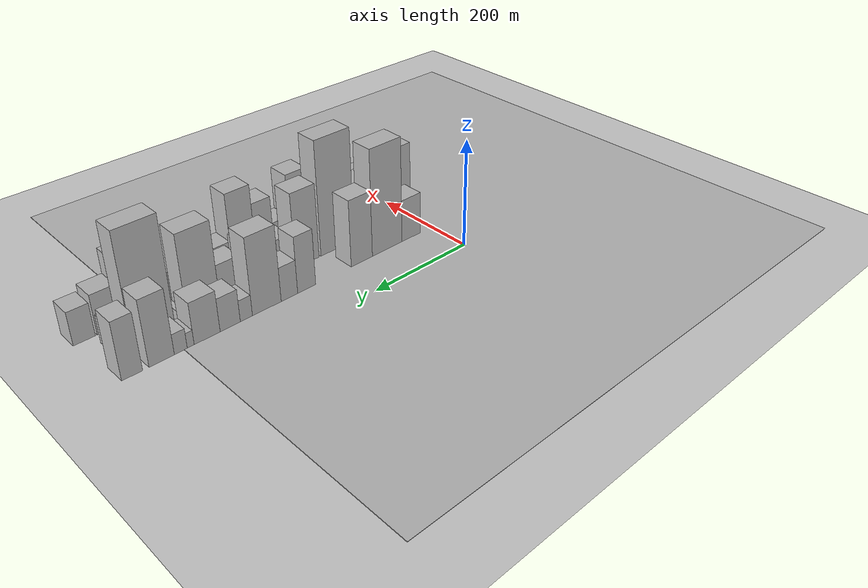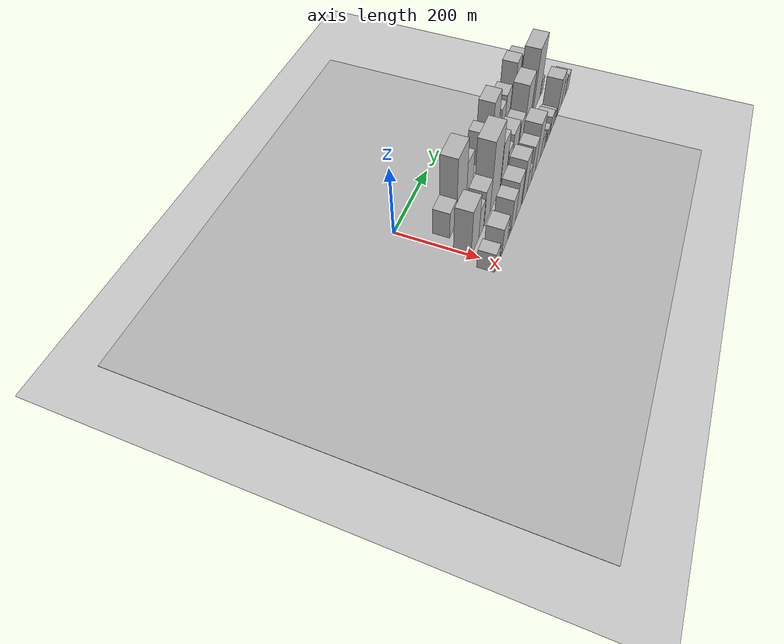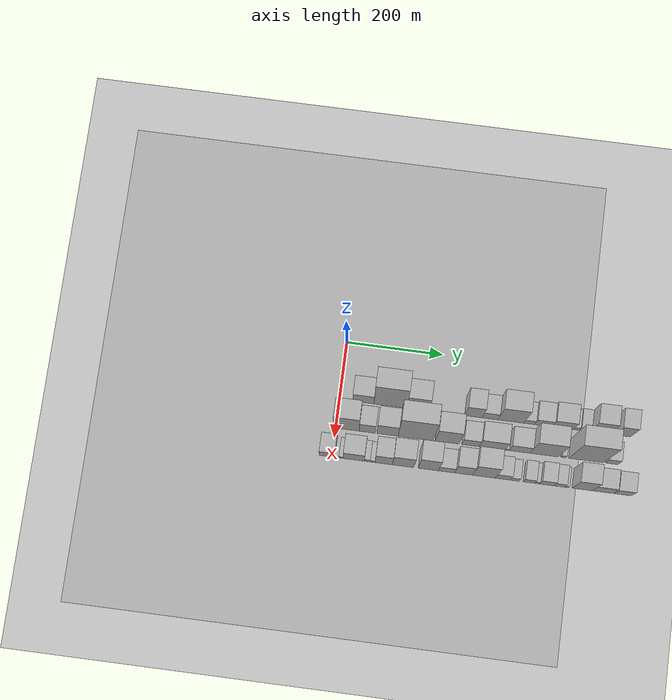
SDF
<sdf version="1.6">
 <world name="default">
  <include><name>ground_plane_1</name><uri>model://HANNAS_ground_plane</uri></include>
  <include>
   <name>ground_plane_2</name>
   <uri>model://HANNAS_ground_plane</uri>
   <pose>100 0 0  0 0 0</pose>
  </include>
  <model name="building_17">
   <static>1</static>
   <pose>100.0000 49.7188 0 0.000000 0.000000 0.000000</pose>
   <link name="link">
    <pose>0 0 40.50 0 0 0</pose>
    <collision name="collision"><geometry><box><size>40.0000 43.7797 81.0000</size></box></geometry></collision>
    <visual name="visual">
     <cast_shadows>0</cast_shadows>
     <geometry><box><size>40.0000 43.7797 81.0000</size></box></geometry>
     <material>
      <script>
       <uri>model://HANNAS_wall/materials/scripts</uri>
       <uri>model://HANNAS_wall/materials/textures</uri>
       <name>vrc/HANNAS_wall</name>
      </script>
     </material>
    </visual>
   </link>
  </model>
  <model name="building_18">
   <static>1</static>
   <pose>100.0000 105.1265 0 0.000000 0.000000 0.000000</pose>
   <link name="link">
    <pose>0 0 100.50 0 0 0</pose>
    <collision name="collision"><geometry><box><size>40.0000 67.0357 201.0000</size></box></geometry></collision>
    <visual name="visual">
     <cast_shadows>0</cast_shadows>
     <geometry><box><size>40.0000 67.0357 201.0000</size></box></geometry>
     <material>
      <script>
       <uri>model://HANNAS_wall/materials/scripts</uri>
       <uri>model://HANNAS_wall/materials/textures</uri>
       <name>vrc/HANNAS_wall</name>
      </script>
     </material>
    </visual>
   </link>
  </model>
  <model name="building_19">
   <static>1</static>
   <pose>100.0000 161.7605 0 0.000000 0.000000 0.000000</pose>
   <link name="link">
    <pose>0 0 63.00 0 0 0</pose>
    <collision name="collision"><geometry><box><size>40.0000 46.2322 126.0000</size></box></geometry></collision>
    <visual name="visual">
     <cast_shadows>0</cast_shadows>
     <geometry><box><size>40.0000 46.2322 126.0000</size></box></geometry>
     <material>
      <script>
       <uri>model://HANNAS_wall/materials/scripts</uri>
       <uri>model://HANNAS_wall/materials/textures</uri>
       <name>vrc/HANNAS_wall</name>
      </script>
     </material>
    </visual>
   </link>
  </model>
  <model name="building_20">
   <static>1</static>
   <pose>100.0000 276.7857 0 0.000000 0.000000 0.000000</pose>
   <link name="link">
    <pose>0 0 52.50 0 0 0</pose>
    <collision name="collision"><geometry><box><size>40.0000 35.9394 105.0000</size></box></geometry></collision>
    <visual name="visual">
     <cast_shadows>0</cast_shadows>
     <geometry><box><size>40.0000 35.9394 105.0000</size></box></geometry>
     <material>
      <script>
       <uri>model://HANNAS_wall/materials/scripts</uri>
       <uri>model://HANNAS_wall/materials/textures</uri>
       <name>vrc/HANNAS_wall</name>
      </script>
     </material>
    </visual>
   </link>
  </model>
  <model name="building_21">
   <static>1</static>
   <pose>100.0000 310.7436 0 0.000000 0.000000 0.000000</pose>
   <link name="link">
    <pose>0 0 31.50 0 0 0</pose>
    <collision name="collision"><geometry><box><size>40.0000 31.9765 63.0000</size></box></geometry></collision>
    <visual name="visual">
     <cast_shadows>0</cast_shadows>
     <geometry><box><size>40.0000 31.9765 63.0000</size></box></geometry>
     <material>
      <script>
       <uri>model://HANNAS_wall/materials/scripts</uri>
       <uri>model://HANNAS_wall/materials/textures</uri>
       <name>vrc/HANNAS_wall</name>
      </script>
     </material>
    </visual>
   </link>
  </model>
  <model name="building_22">
   <static>1</static>
   <pose>100.0000 353.7843 0 0.000000 0.000000 0.000000</pose>
   <link name="link">
    <pose>0 0 70.50 0 0 0</pose>
    <collision name="collision"><geometry><box><size>40.0000 54.1048 141.0000</size></box></geometry></collision>
    <visual name="visual">
     <cast_shadows>0</cast_shadows>
     <geometry><box><size>40.0000 54.1048 141.0000</size></box></geometry>
     <material>
      <script>
       <uri>model://HANNAS_wall/materials/scripts</uri>
       <uri>model://HANNAS_wall/materials/textures</uri>
       <name>vrc/HANNAS_wall</name>
      </script>
     </material>
    </visual>
   </link>
  </model>
  <model name="building_23">
   <static>1</static>
   <pose>100.0000 391.8580 0 0.000000 0.000000 0.000000</pose>
   <link name="link">
    <pose>0 0 19.50 0 0 0</pose>
    <collision name="collision"><geometry><box><size>40.0000 22.0427 39.0000</size></box></geometry></collision>
    <visual name="visual">
     <cast_shadows>0</cast_shadows>
     <geometry><box><size>40.0000 22.0427 39.0000</size></box></geometry>
     <material>
      <script>
       <uri>model://HANNAS_wall/materials/scripts</uri>
       <uri>model://HANNAS_wall/materials/textures</uri>
       <name>vrc/HANNAS_wall</name>
      </script>
     </material>
    </visual>
   </link>
  </model>
  <model name="building_24">
   <static>1</static>
   <pose>100.0000 420.8539 0 0.000000 0.000000 0.000000</pose>
   <link name="link">
    <pose>0 0 30.00 0 0 0</pose>
    <collision name="collision"><geometry><box><size>40.0000 35.9491 60.0000</size></box></geometry></collision>
    <visual name="visual">
     <cast_shadows>0</cast_shadows>
     <geometry><box><size>40.0000 35.9491 60.0000</size></box></geometry>
     <material>
      <script>
       <uri>model://HANNAS_wall/materials/scripts</uri>
       <uri>model://HANNAS_wall/materials/textures</uri>
       <name>vrc/HANNAS_wall</name>
      </script>
     </material>
    </visual>
   </link>
  </model>
  <model name="building_25">
   <static>1</static>
   <pose>100.0000 461.1783 0 0.000000 0.000000 0.000000</pose>
   <link name="link">
    <pose>0 0 37.50 0 0 0</pose>
    <collision name="collision"><geometry><box><size>40.0000 44.6996 75.0000</size></box></geometry></collision>
    <visual name="visual">
     <cast_shadows>0</cast_shadows>
     <geometry><box><size>40.0000 44.6996 75.0000</size></box></geometry>
     <material>
      <script>
       <uri>model://HANNAS_wall/materials/scripts</uri>
       <uri>model://HANNAS_wall/materials/textures</uri>
       <name>vrc/HANNAS_wall</name>
      </script>
     </material>
    </visual>
   </link>
  </model>
  <model name="building_26">
   <static>1</static>
   <pose>100.0000 489.3432 0 0.000000 0.000000 0.000000</pose>
   <link name="link">
    <pose>0 0 13.50 0 0 0</pose>
    <collision name="collision"><geometry><box><size>40.0000 11.6302 27.0000</size></box></geometry></collision>
    <visual name="visual">
     <cast_shadows>0</cast_shadows>
     <geometry><box><size>40.0000 11.6302 27.0000</size></box></geometry>
     <material>
      <script>
       <uri>model://HANNAS_wall/materials/scripts</uri>
       <uri>model://HANNAS_wall/materials/textures</uri>
       <name>vrc/HANNAS_wall</name>
      </script>
     </material>
    </visual>
   </link>
  </model>
  <model name="building_27">
   <static>1</static>
   <pose>100.0000 505.8549 0 0.000000 0.000000 0.000000</pose>
   <link name="link">
    <pose>0 0 18.00 0 0 0</pose>
    <collision name="collision"><geometry><box><size>40.0000 21.3932 36.0000</size></box></geometry></collision>
    <visual name="visual">
     <cast_shadows>0</cast_shadows>
     <geometry><box><size>40.0000 21.3932 36.0000</size></box></geometry>
     <material>
      <script>
       <uri>model://HANNAS_wall/materials/scripts</uri>
       <uri>model://HANNAS_wall/materials/textures</uri>
       <name>vrc/HANNAS_wall</name>
      </script>
     </material>
    </visual>
   </link>
  </model>
  <model name="building_28">
   <static>1</static>
   <pose>100.0000 537.0543 0 0.000000 0.000000 0.000000</pose>
   <link name="link">
    <pose>0 0 58.50 0 0 0</pose>
    <collision name="collision"><geometry><box><size>40.0000 41.0055 117.0000</size></box></geometry></collision>
    <visual name="visual">
     <cast_shadows>0</cast_shadows>
     <geometry><box><size>40.0000 41.0055 117.0000</size></box></geometry>
     <material>
      <script>
       <uri>model://HANNAS_wall/materials/scripts</uri>
       <uri>model://HANNAS_wall/materials/textures</uri>
       <name>vrc/HANNAS_wall</name>
      </script>
     </material>
    </visual>
   </link>
  </model>
  <model name="building_29">
   <static>1</static>
   <pose>100.0000 583.9292 0 0.000000 0.000000 0.000000</pose>
   <link name="link">
    <pose>0 0 51.00 0 0 0</pose>
    <collision name="collision"><geometry><box><size>40.0000 32.7443 102.0000</size></box></geometry></collision>
    <visual name="visual">
     <cast_shadows>0</cast_shadows>
     <geometry><box><size>40.0000 32.7443 102.0000</size></box></geometry>
     <material>
      <script>
       <uri>model://HANNAS_wall/materials/scripts</uri>
       <uri>model://HANNAS_wall/materials/textures</uri>
       <name>vrc/HANNAS_wall</name>
      </script>
     </material>
    </visual>
   </link>
  </model>
  <model name="building_47">
   <static>1</static>
   <pose>160.0000 22.8496 0 0.000000 0.000000 0.000000</pose>
   <link name="link">
    <pose>0 0 72.00 0 0 0</pose>
    <collision name="collision"><geometry><box><size>40.0000 52.5208 144.0000</size></box></geometry></collision>
    <visual name="visual">
     <cast_shadows>0</cast_shadows>
     <geometry><box><size>40.0000 52.5208 144.0000</size></box></geometry>
     <material>
      <script>
       <uri>model://HANNAS_wall/materials/scripts</uri>
       <uri>model://HANNAS_wall/materials/textures</uri>
       <name>vrc/HANNAS_wall</name>
      </script>
     </material>
    </visual>
   </link>
  </model>
  <model name="building_48">
   <static>1</static>
   <pose>160.0000 65.7420 0 0.000000 0.000000 0.000000</pose>
   <link name="link">
    <pose>0 0 46.50 0 0 0</pose>
    <collision name="collision"><geometry><box><size>40.0000 33.2640 93.0000</size></box></geometry></collision>
    <visual name="visual">
     <cast_shadows>0</cast_shadows>
     <geometry><box><size>40.0000 33.2640 93.0000</size></box></geometry>
     <material>
      <script>
       <uri>model://HANNAS_wall/materials/scripts</uri>
       <uri>model://HANNAS_wall/materials/textures</uri>
       <name>vrc/HANNAS_wall</name>
      </script>
     </material>
    </visual>
   </link>
  </model>
  <model name="building_49">
   <static>1</static>
   <pose>160.0000 107.1254 0 0.000000 0.000000 0.000000</pose>
   <link name="link">
    <pose>0 0 55.50 0 0 0</pose>
    <collision name="collision"><geometry><box><size>40.0000 43.5029 111.0000</size></box></geometry></collision>
    <visual name="visual">
     <cast_shadows>0</cast_shadows>
     <geometry><box><size>40.0000 43.5029 111.0000</size></box></geometry>
     <material>
      <script>
       <uri>model://HANNAS_wall/materials/scripts</uri>
       <uri>model://HANNAS_wall/materials/textures</uri>
       <name>vrc/HANNAS_wall</name>
      </script>
     </material>
    </visual>
   </link>
  </model>
  <model name="building_50">
   <static>1</static>
   <pose>160.0000 164.9532 0 0.000000 0.000000 0.000000</pose>
   <link name="link">
    <pose>0 0 108.00 0 0 0</pose>
    <collision name="collision"><geometry><box><size>40.0000 72.1527 216.0000</size></box></geometry></collision>
    <visual name="visual">
     <cast_shadows>0</cast_shadows>
     <geometry><box><size>40.0000 72.1527 216.0000</size></box></geometry>
     <material>
      <script>
       <uri>model://HANNAS_wall/materials/scripts</uri>
       <uri>model://HANNAS_wall/materials/textures</uri>
       <name>vrc/HANNAS_wall</name>
      </script>
     </material>
    </visual>
   </link>
  </model>
  <model name="building_51">
   <static>1</static>
   <pose>160.0000 229.6147 0 0.000000 0.000000 0.000000</pose>
   <link name="link">
    <pose>0 0 70.50 0 0 0</pose>
    <collision name="collision"><geometry><box><size>40.0000 49.1704 141.0000</size></box></geometry></collision>
    <visual name="visual">
     <cast_shadows>0</cast_shadows>
     <geometry><box><size>40.0000 49.1704 141.0000</size></box></geometry>
     <material>
      <script>
       <uri>model://HANNAS_wall/materials/scripts</uri>
       <uri>model://HANNAS_wall/materials/textures</uri>
       <name>vrc/HANNAS_wall</name>
      </script>
     </material>
    </visual>
   </link>
  </model>
  <model name="building_52">
   <static>1</static>
   <pose>160.0000 278.0520 0 0.000000 0.000000 0.000000</pose>
   <link name="link">
    <pose>0 0 34.50 0 0 0</pose>
    <collision name="collision"><geometry><box><size>40.0000 35.7041 69.0000</size></box></geometry></collision>
    <visual name="visual">
     <cast_shadows>0</cast_shadows>
     <geometry><box><size>40.0000 35.7041 69.0000</size></box></geometry>
     <material>
      <script>
       <uri>model://HANNAS_wall/materials/scripts</uri>
       <uri>model://HANNAS_wall/materials/textures</uri>
       <name>vrc/HANNAS_wall</name>
      </script>
     </material>
    </visual>
   </link>
  </model>
  <model name="building_53">
   <static>1</static>
   <pose>160.0000 322.7842 0 0.000000 0.000000 0.000000</pose>
   <link name="link">
    <pose>0 0 45.00 0 0 0</pose>
    <collision name="collision"><geometry><box><size>40.0000 53.7603 90.0000</size></box></geometry></collision>
    <visual name="visual">
     <cast_shadows>0</cast_shadows>
     <geometry><box><size>40.0000 53.7603 90.0000</size></box></geometry>
     <material>
      <script>
       <uri>model://HANNAS_wall/materials/scripts</uri>
       <uri>model://HANNAS_wall/materials/textures</uri>
       <name>vrc/HANNAS_wall</name>
      </script>
     </material>
    </visual>
   </link>
  </model>
  <model name="building_54">
   <static>1</static>
   <pose>160.0000 353.2709 0 0.000000 0.000000 0.000000</pose>
   <link name="link">
    <pose>0 0 7.50 0 0 0</pose>
    <collision name="collision"><geometry><box><size>40.0000 7.2129 15.0000</size></box></geometry></collision>
    <visual name="visual">
     <cast_shadows>0</cast_shadows>
     <geometry><box><size>40.0000 7.2129 15.0000</size></box></geometry>
     <material>
      <script>
       <uri>model://HANNAS_wall/materials/scripts</uri>
       <uri>model://HANNAS_wall/materials/textures</uri>
       <name>vrc/HANNAS_wall</name>
      </script>
     </material>
    </visual>
   </link>
  </model>
  <model name="building_55">
   <static>1</static>
   <pose>160.0000 378.2651 0 0.000000 0.000000 0.000000</pose>
   <link name="link">
    <pose>0 0 36.00 0 0 0</pose>
    <collision name="collision"><geometry><box><size>40.0000 42.7756 72.0000</size></box></geometry></collision>
    <visual name="visual">
     <cast_shadows>0</cast_shadows>
     <geometry><box><size>40.0000 42.7756 72.0000</size></box></geometry>
     <material>
      <script>
       <uri>model://HANNAS_wall/materials/scripts</uri>
       <uri>model://HANNAS_wall/materials/textures</uri>
       <name>vrc/HANNAS_wall</name>
      </script>
     </material>
    </visual>
   </link>
  </model>
  <model name="building_56">
   <static>1</static>
   <pose>160.0000 429.1501 0 0.000000 0.000000 0.000000</pose>
   <link name="link">
    <pose>0 0 76.50 0 0 0</pose>
    <collision name="collision"><geometry><box><size>40.0000 58.9943 153.0000</size></box></geometry></collision>
    <visual name="visual">
     <cast_shadows>0</cast_shadows>
     <geometry><box><size>40.0000 58.9943 153.0000</size></box></geometry>
     <material>
      <script>
       <uri>model://HANNAS_wall/materials/scripts</uri>
       <uri>model://HANNAS_wall/materials/textures</uri>
       <name>vrc/HANNAS_wall</name>
      </script>
     </material>
    </visual>
   </link>
  </model>
  <model name="building_57">
   <static>1</static>
   <pose>160.0000 468.6605 0 0.000000 0.000000 0.000000</pose>
   <link name="link">
    <pose>0 0 12.00 0 0 0</pose>
    <collision name="collision"><geometry><box><size>40.0000 10.0266 24.0000</size></box></geometry></collision>
    <visual name="visual">
     <cast_shadows>0</cast_shadows>
     <geometry><box><size>40.0000 10.0266 24.0000</size></box></geometry>
     <material>
      <script>
       <uri>model://HANNAS_wall/materials/scripts</uri>
       <uri>model://HANNAS_wall/materials/textures</uri>
       <name>vrc/HANNAS_wall</name>
      </script>
     </material>
    </visual>
   </link>
  </model>
  <model name="building_58">
   <static>1</static>
   <pose>160.0000 515.2300 0 0.000000 0.000000 0.000000</pose>
   <link name="link">
    <pose>0 0 99.00 0 0 0</pose>
    <collision name="collision"><geometry><box><size>40.0000 71.1122 198.0000</size></box></geometry></collision>
    <visual name="visual">
     <cast_shadows>0</cast_shadows>
     <geometry><box><size>40.0000 71.1122 198.0000</size></box></geometry>
     <material>
      <script>
       <uri>model://HANNAS_wall/materials/scripts</uri>
       <uri>model://HANNAS_wall/materials/textures</uri>
       <name>vrc/HANNAS_wall</name>
      </script>
     </material>
    </visual>
   </link>
  </model>
  <model name="building_59">
   <static>1</static>
   <pose>160.0000 567.6348 0 0.000000 0.000000 0.000000</pose>
   <link name="link">
    <pose>0 0 25.50 0 0 0</pose>
    <collision name="collision"><geometry><box><size>40.0000 25.6975 51.0000</size></box></geometry></collision>
    <visual name="visual">
     <cast_shadows>0</cast_shadows>
     <geometry><box><size>40.0000 25.6975 51.0000</size></box></geometry>
     <material>
      <script>
       <uri>model://HANNAS_wall/materials/scripts</uri>
       <uri>model://HANNAS_wall/materials/textures</uri>
       <name>vrc/HANNAS_wall</name>
      </script>
     </material>
    </visual>
   </link>
  </model>
  <model name="building_74">
   <static>1</static>
   <pose>220.0000 -9.1567 0 0.000000 0.000000 0.000000</pose>
   <link name="link">
    <pose>0 0 30.00 0 0 0</pose>
    <collision name="collision"><geometry><box><size>40.0000 31.7505 60.0000</size></box></geometry></collision>
    <visual name="visual">
     <cast_shadows>0</cast_shadows>
     <geometry><box><size>40.0000 31.7505 60.0000</size></box></geometry>
     <material>
      <script>
       <uri>model://HANNAS_wall/materials/scripts</uri>
       <uri>model://HANNAS_wall/materials/textures</uri>
       <name>vrc/HANNAS_wall</name>
      </script>
     </material>
    </visual>
   </link>
  </model>
  <model name="building_75">
   <static>1</static>
   <pose>220.0000 19.3440 0 0.000000 0.000000 0.000000</pose>
   <link name="link">
    <pose>0 0 10.50 0 0 0</pose>
    <collision name="collision"><geometry><box><size>40.0000 9.2508 21.0000</size></box></geometry></collision>
    <visual name="visual">
     <cast_shadows>0</cast_shadows>
     <geometry><box><size>40.0000 9.2508 21.0000</size></box></geometry>
     <material>
      <script>
       <uri>model://HANNAS_wall/materials/scripts</uri>
       <uri>model://HANNAS_wall/materials/textures</uri>
       <name>vrc/HANNAS_wall</name>
      </script>
     </material>
    </visual>
   </link>
  </model>
  <model name="building_76">
   <static>1</static>
   <pose>220.0000 45.6242 0 0.000000 0.000000 0.000000</pose>
   <link name="link">
    <pose>0 0 42.00 0 0 0</pose>
    <collision name="collision"><geometry><box><size>40.0000 43.3096 84.0000</size></box></geometry></collision>
    <visual name="visual">
     <cast_shadows>0</cast_shadows>
     <geometry><box><size>40.0000 43.3096 84.0000</size></box></geometry>
     <material>
      <script>
       <uri>model://HANNAS_wall/materials/scripts</uri>
       <uri>model://HANNAS_wall/materials/textures</uri>
       <name>vrc/HANNAS_wall</name>
      </script>
     </material>
    </visual>
   </link>
  </model>
  <model name="building_77">
   <static>1</static>
   <pose>220.0000 73.0393 0 0.000000 0.000000 0.000000</pose>
   <link name="link">
    <pose>0 0 13.50 0 0 0</pose>
    <collision name="collision"><geometry><box><size>40.0000 11.5207 27.0000</size></box></geometry></collision>
    <visual name="visual">
     <cast_shadows>0</cast_shadows>
     <geometry><box><size>40.0000 11.5207 27.0000</size></box></geometry>
     <material>
      <script>
       <uri>model://HANNAS_wall/materials/scripts</uri>
       <uri>model://HANNAS_wall/materials/textures</uri>
       <name>vrc/HANNAS_wall</name>
      </script>
     </material>
    </visual>
   </link>
  </model>
  <model name="building_78">
   <static>1</static>
   <pose>220.0000 83.8946 0 0.000000 0.000000 0.000000</pose>
   <link name="link">
    <pose>0 0 10.50 0 0 0</pose>
    <collision name="collision"><geometry><box><size>40.0000 10.1899 21.0000</size></box></geometry></collision>
    <visual name="visual">
     <cast_shadows>0</cast_shadows>
     <geometry><box><size>40.0000 10.1899 21.0000</size></box></geometry>
     <material>
      <script>
       <uri>model://HANNAS_wall/materials/scripts</uri>
       <uri>model://HANNAS_wall/materials/textures</uri>
       <name>vrc/HANNAS_wall</name>
      </script>
     </material>
    </visual>
   </link>
  </model>
  <model name="building_79">
   <static>1</static>
   <pose>220.0000 106.8082 0 0.000000 0.000000 0.000000</pose>
   <link name="link">
    <pose>0 0 52.50 0 0 0</pose>
    <collision name="collision"><geometry><box><size>40.0000 35.6374 105.0000</size></box></geometry></collision>
    <visual name="visual">
     <cast_shadows>0</cast_shadows>
     <geometry><box><size>40.0000 35.6374 105.0000</size></box></geometry>
     <material>
      <script>
       <uri>model://HANNAS_wall/materials/scripts</uri>
       <uri>model://HANNAS_wall/materials/textures</uri>
       <name>vrc/HANNAS_wall</name>
      </script>
     </material>
    </visual>
   </link>
  </model>
  <model name="building_80">
   <static>1</static>
   <pose>220.0000 146.6291 0 0.000000 0.000000 0.000000</pose>
   <link name="link">
    <pose>0 0 61.50 0 0 0</pose>
    <collision name="collision"><geometry><box><size>40.0000 44.0043 123.0000</size></box></geometry></collision>
    <visual name="visual">
     <cast_shadows>0</cast_shadows>
     <geometry><box><size>40.0000 44.0043 123.0000</size></box></geometry>
     <material>
      <script>
       <uri>model://HANNAS_wall/materials/scripts</uri>
       <uri>model://HANNAS_wall/materials/textures</uri>
       <name>vrc/HANNAS_wall</name>
      </script>
     </material>
    </visual>
   </link>
  </model>
  <model name="building_81">
   <static>1</static>
   <pose>220.0000 198.3652 0 0.000000 0.000000 0.000000</pose>
   <link name="link">
    <pose>0 0 69.00 0 0 0</pose>
    <collision name="collision"><geometry><box><size>40.0000 41.4679 138.0000</size></box></geometry></collision>
    <visual name="visual">
     <cast_shadows>0</cast_shadows>
     <geometry><box><size>40.0000 41.4679 138.0000</size></box></geometry>
     <material>
      <script>
       <uri>model://HANNAS_wall/materials/scripts</uri>
       <uri>model://HANNAS_wall/materials/textures</uri>
       <name>vrc/HANNAS_wall</name>
      </script>
     </material>
    </visual>
   </link>
  </model>
  <model name="building_82">
   <static>1</static>
   <pose>220.0000 235.6492 0 0.000000 0.000000 0.000000</pose>
   <link name="link">
    <pose>0 0 30.00 0 0 0</pose>
    <collision name="collision"><geometry><box><size>40.0000 33.1000 60.0000</size></box></geometry></collision>
    <visual name="visual">
     <cast_shadows>0</cast_shadows>
     <geometry><box><size>40.0000 33.1000 60.0000</size></box></geometry>
     <material>
      <script>
       <uri>model://HANNAS_wall/materials/scripts</uri>
       <uri>model://HANNAS_wall/materials/textures</uri>
       <name>vrc/HANNAS_wall</name>
      </script>
     </material>
    </visual>
   </link>
  </model>
  <model name="building_83">
   <static>1</static>
   <pose>220.0000 270.5148 0 0.000000 0.000000 0.000000</pose>
   <link name="link">
    <pose>0 0 55.50 0 0 0</pose>
    <collision name="collision"><geometry><box><size>40.0000 36.6313 111.0000</size></box></geometry></collision>
    <visual name="visual">
     <cast_shadows>0</cast_shadows>
     <geometry><box><size>40.0000 36.6313 111.0000</size></box></geometry>
     <material>
      <script>
       <uri>model://HANNAS_wall/materials/scripts</uri>
       <uri>model://HANNAS_wall/materials/textures</uri>
       <name>vrc/HANNAS_wall</name>
      </script>
     </material>
    </visual>
   </link>
  </model>
  <model name="building_84">
   <static>1</static>
   <pose>220.0000 312.0341 0 0.000000 0.000000 0.000000</pose>
   <link name="link">
    <pose>0 0 73.50 0 0 0</pose>
    <collision name="collision"><geometry><box><size>40.0000 46.4073 147.0000</size></box></geometry></collision>
    <visual name="visual">
     <cast_shadows>0</cast_shadows>
     <geometry><box><size>40.0000 46.4073 147.0000</size></box></geometry>
     <material>
      <script>
       <uri>model://HANNAS_wall/materials/scripts</uri>
       <uri>model://HANNAS_wall/materials/textures</uri>
       <name>vrc/HANNAS_wall</name>
      </script>
     </material>
    </visual>
   </link>
  </model>
  <model name="building_85">
   <static>1</static>
   <pose>220.0000 350.8319 0 0.000000 0.000000 0.000000</pose>
   <link name="link">
    <pose>0 0 30.00 0 0 0</pose>
    <collision name="collision"><geometry><box><size>40.0000 31.1883 60.0000</size></box></geometry></collision>
    <visual name="visual">
     <cast_shadows>0</cast_shadows>
     <geometry><box><size>40.0000 31.1883 60.0000</size></box></geometry>
     <material>
      <script>
       <uri>model://HANNAS_wall/materials/scripts</uri>
       <uri>model://HANNAS_wall/materials/textures</uri>
       <name>vrc/HANNAS_wall</name>
      </script>
     </material>
    </visual>
   </link>
  </model>
  <model name="building_86">
   <static>1</static>
   <pose>220.0000 375.6401 0 0.000000 0.000000 0.000000</pose>
   <link name="link">
    <pose>0 0 18.00 0 0 0</pose>
    <collision name="collision"><geometry><box><size>40.0000 18.4280 36.0000</size></box></geometry></collision>
    <visual name="visual">
     <cast_shadows>0</cast_shadows>
     <geometry><box><size>40.0000 18.4280 36.0000</size></box></geometry>
     <material>
      <script>
       <uri>model://HANNAS_wall/materials/scripts</uri>
       <uri>model://HANNAS_wall/materials/textures</uri>
       <name>vrc/HANNAS_wall</name>
      </script>
     </material>
    </visual>
   </link>
  </model>
  <model name="building_87">
   <static>1</static>
   <pose>220.0000 404.5553 0 0.000000 0.000000 0.000000</pose>
   <link name="link">
    <pose>0 0 21.00 0 0 0</pose>
    <collision name="collision"><geometry><box><size>40.0000 23.4024 42.0000</size></box></geometry></collision>
    <visual name="visual">
     <cast_shadows>0</cast_shadows>
     <geometry><box><size>40.0000 23.4024 42.0000</size></box></geometry>
     <material>
      <script>
       <uri>model://HANNAS_wall/materials/scripts</uri>
       <uri>model://HANNAS_wall/materials/textures</uri>
       <name>vrc/HANNAS_wall</name>
      </script>
     </material>
    </visual>
   </link>
  </model>
  <model name="building_88">
   <static>1</static>
   <pose>220.0000 421.2061 0 0.000000 0.000000 0.000000</pose>
   <link name="link">
    <pose>0 0 12.00 0 0 0</pose>
    <collision name="collision"><geometry><box><size>40.0000 9.8992 24.0000</size></box></geometry></collision>
    <visual name="visual">
     <cast_shadows>0</cast_shadows>
     <geometry><box><size>40.0000 9.8992 24.0000</size></box></geometry>
     <material>
      <script>
       <uri>model://HANNAS_wall/materials/scripts</uri>
       <uri>model://HANNAS_wall/materials/textures</uri>
       <name>vrc/HANNAS_wall</name>
      </script>
     </material>
    </visual>
   </link>
  </model>
  <model name="building_89">
   <static>1</static>
   <pose>220.0000 441.0123 0 0.000000 0.000000 0.000000</pose>
   <link name="link">
    <pose>0 0 27.00 0 0 0</pose>
    <collision name="collision"><geometry><box><size>40.0000 29.7131 54.0000</size></box></geometry></collision>
    <visual name="visual">
     <cast_shadows>0</cast_shadows>
     <geometry><box><size>40.0000 29.7131 54.0000</size></box></geometry>
     <material>
      <script>
       <uri>model://HANNAS_wall/materials/scripts</uri>
       <uri>model://HANNAS_wall/materials/textures</uri>
       <name>vrc/HANNAS_wall</name>
      </script>
     </material>
    </visual>
   </link>
  </model>
  <model name="building_90">
   <static>1</static>
   <pose>220.0000 466.8639 0 0.000000 0.000000 0.000000</pose>
   <link name="link">
    <pose>0 0 21.00 0 0 0</pose>
    <collision name="collision"><geometry><box><size>40.0000 21.9901 42.0000</size></box></geometry></collision>
    <visual name="visual">
     <cast_shadows>0</cast_shadows>
     <geometry><box><size>40.0000 21.9901 42.0000</size></box></geometry>
     <material>
      <script>
       <uri>model://HANNAS_wall/materials/scripts</uri>
       <uri>model://HANNAS_wall/materials/textures</uri>
       <name>vrc/HANNAS_wall</name>
      </script>
     </material>
    </visual>
   </link>
  </model>
  <model name="building_91">
   <static>1</static>
   <pose>220.0000 481.7857 0 0.000000 0.000000 0.000000</pose>
   <link name="link">
    <pose>0 0 9.00 0 0 0</pose>
    <collision name="collision"><geometry><box><size>40.0000 7.8535 18.0000</size></box></geometry></collision>
    <visual name="visual">
     <cast_shadows>0</cast_shadows>
     <geometry><box><size>40.0000 7.8535 18.0000</size></box></geometry>
     <material>
      <script>
       <uri>model://HANNAS_wall/materials/scripts</uri>
       <uri>model://HANNAS_wall/materials/textures</uri>
       <name>vrc/HANNAS_wall</name>
      </script>
     </material>
    </visual>
   </link>
  </model>
  <model name="building_92">
   <static>1</static>
   <pose>220.0000 513.5228 0 0.000000 0.000000 0.000000</pose>
   <link name="link">
    <pose>0 0 58.50 0 0 0</pose>
    <collision name="collision"><geometry><box><size>40.0000 41.6206 117.0000</size></box></geometry></collision>
    <visual name="visual">
     <cast_shadows>0</cast_shadows>
     <geometry><box><size>40.0000 41.6206 117.0000</size></box></geometry>
     <material>
      <script>
       <uri>model://HANNAS_wall/materials/scripts</uri>
       <uri>model://HANNAS_wall/materials/textures</uri>
       <name>vrc/HANNAS_wall</name>
      </script>
     </material>
    </visual>
   </link>
  </model>
  <model name="building_93">
   <static>1</static>
   <pose>220.0000 554.9581 0 0.000000 0.000000 0.000000</pose>
   <link name="link">
    <pose>0 0 36.00 0 0 0</pose>
    <collision name="collision"><geometry><box><size>40.0000 41.2499 72.0000</size></box></geometry></collision>
    <visual name="visual">
     <cast_shadows>0</cast_shadows>
     <geometry><box><size>40.0000 41.2499 72.0000</size></box></geometry>
     <material>
      <script>
       <uri>model://HANNAS_wall/materials/scripts</uri>
       <uri>model://HANNAS_wall/materials/textures</uri>
       <name>vrc/HANNAS_wall</name>
      </script>
     </material>
    </visual>
   </link>
  </model>
  <model name="building_94">
   <static>1</static>
   <pose>220.0000 596.0751 0 0.000000 0.000000 0.000000</pose>
   <link name="link">
    <pose>0 0 30.00 0 0 0</pose>
    <collision name="collision"><geometry><box><size>40.0000 34.9841 60.0000</size></box></geometry></collision>
    <visual name="visual">
     <cast_shadows>0</cast_shadows>
     <geometry><box><size>40.0000 34.9841 60.0000</size></box></geometry>
     <material>
      <script>
       <uri>model://HANNAS_wall/materials/scripts</uri>
       <uri>model://HANNAS_wall/materials/textures</uri>
       <name>vrc/HANNAS_wall</name>
      </script>
     </material>
    </visual>
   </link>
  </model>
 </world>
</sdf>
